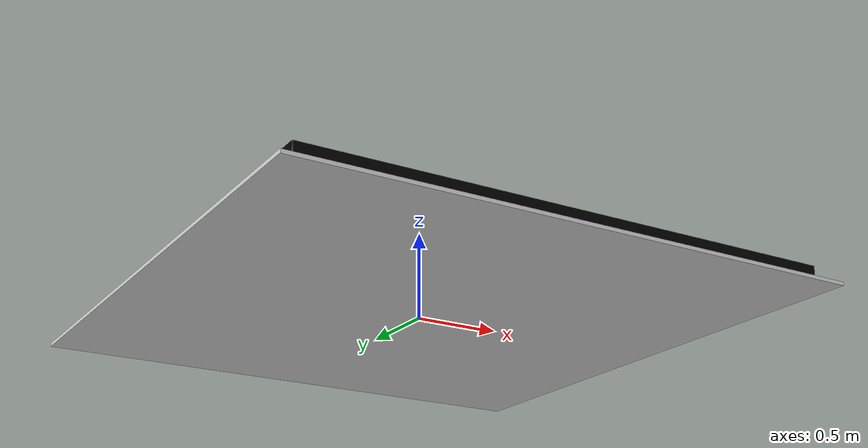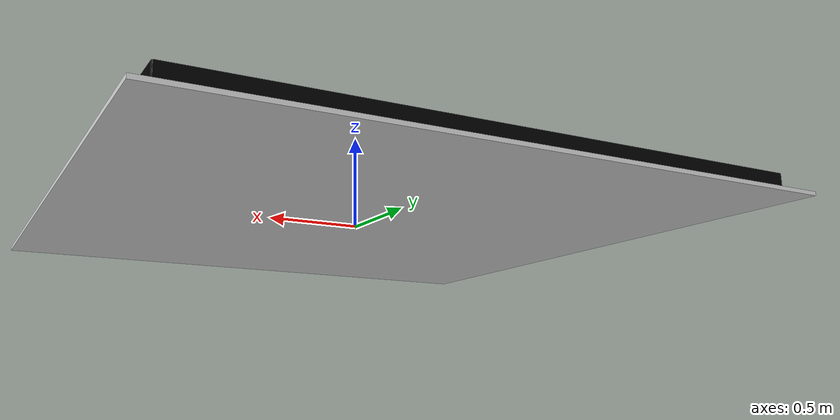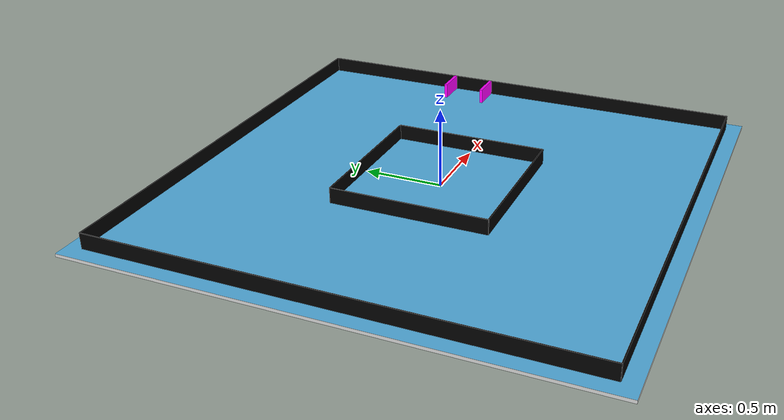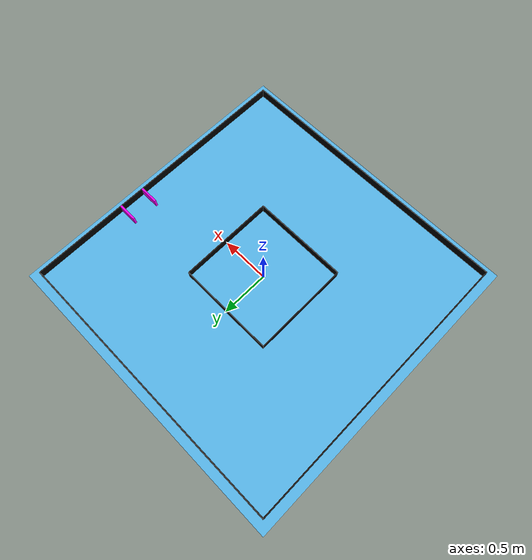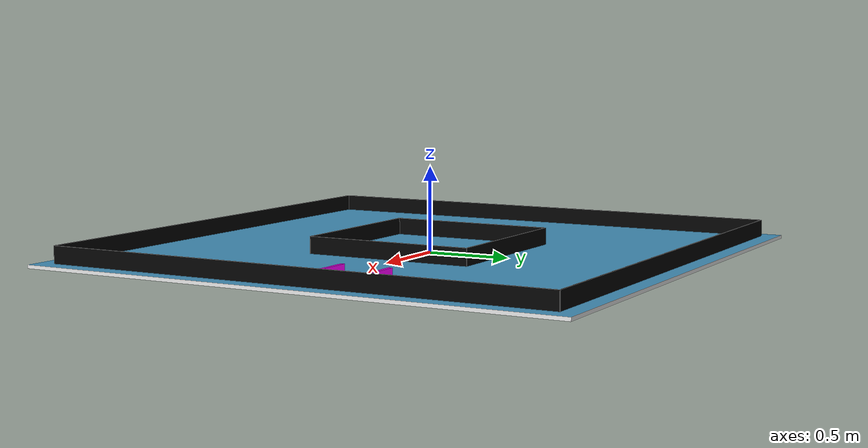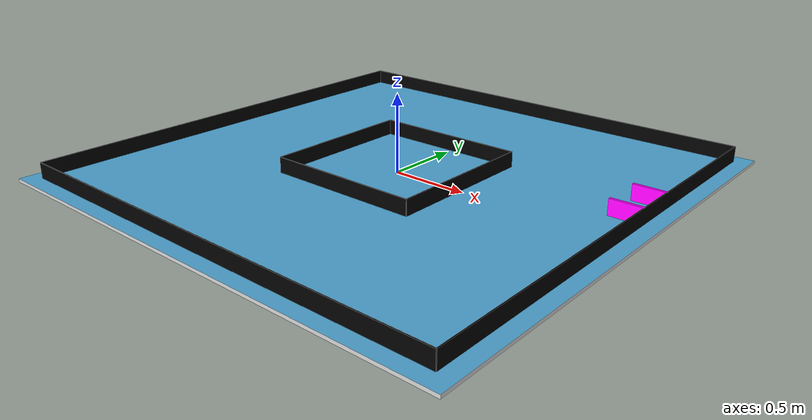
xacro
<?xml version="1.0"?>
<robot xmlns:xacro="http://www.ros.org/wiki/xacro" name="wro_world">
    <link name="world_base_link"/>

    <xacro:arg name="data" default="[[0,0,0,0,0,0],[0,0,0,0,0,0],[0,0,0,0,0,0],[0,0,0,0,0,0]]" />

    <xacro:arg name="mat_config" default="[0, 0, 0, 0]"/>

    <!-- sides extension status -->
    <xacro:property name="twv" value="${$(arg mat_config)[0]}"/>
    <xacro:property name="bwv" value="${$(arg mat_config)[1]}"/>
    <xacro:property name="rwv" value="${$(arg mat_config)[2]}"/>
    <xacro:property name="lwv" value="${$(arg mat_config)[3]}"/>

    <!-- game mat width -->
    <xacro:property name="mw" value="3.2"/>

    <!-- outer wall width -->
    <xacro:property name="oww" value="3"/>

    <!-- inner wall width -->
    <xacro:property name="iww" value="1"/>

    <!-- game mat height/thickness -->
    <xacro:property name="mh" value="0.02"/>

    <!-- lane adjustment value -->
    <xacro:property name="ladj" value="0.4"/>

    <xacro:include filename="colors.xacro"/>
    <xacro:include filename="inertials.xacro"/>
    <xacro:include filename="wall.xacro"/>
    <xacro:include filename="parts.xacro"/>

    <!-- mat link loaded from collada meshfile -->
    <link name="mat_link">
        <visual name="">
            <origin xyz="0.0 0.0 0" rpy="0.0 0.0 0.0"/>
            <geometry>
                <mesh filename="file://$(find wro_robosim)/meshes/wro_mat.dae" scale="1 1 1"/>
            </geometry>
        </visual>
        <collision>
            <origin xyz="0.0 0.0 ${mh/2}" rpy="0.0 0.0 0.0"/>
            <geometry>
                <box size="${mw} ${mw} ${mh}"/>
            </geometry>
        </collision>
        <xacro:box_inertia x="${mw}" y="${mw}" z="${mh}">
            <origin xyz="0.0 0.0 ${mh/2}" rpy="0.0 0.0 0.0"/>
        </xacro:box_inertia>
    </link>
    <joint name="world_mat_link" type="fixed">
        <parent link="world_base_link"/>
        <child link="mat_link"/>
    </joint>

    <!-- side shifting values -->
    <xacro:property name="tsv" value="${ladj*twv}"/>
    <xacro:property name="bsv" value="${ladj*bwv}"/>
    <xacro:property name="rsv" value="${ladj*rwv}"/>
    <xacro:property name="lsv" value="${ladj*lwv}"/>

    <!-- inner walls lengths -->
    <xacro:property name="til" value="${iww+rsv+lsv}"/>
    <xacro:property name="bil" value="${iww+rsv+lsv}"/>
    <xacro:property name="ril" value="${iww+tsv+bsv}"/>
    <xacro:property name="lil" value="${iww+tsv+bsv}"/>

    <!-- outer wall objects -->
    <xacro:wall link_name="top_outer_wall" x="${0}" y="${oww/2}" l="${oww}" dir="1"/>
    <xacro:wall link_name="bottom_outer_wall" x="${0}" y="${-oww/2}" l="${oww}" dir="1"/>
    <xacro:wall link_name="right_outer_wall" x="${oww/2}" y="${0}" l="${oww}" dir="0"/>
    <xacro:wall link_name="left_outer_wall" x="${-oww/2}" y="${0}" l="${oww}" dir="0"/>

    <!-- inner wall objects -->
    <xacro:wall link_name="top_inner_wall" x="${rsv/2-lsv/2}" y="${iww/2+tsv}" l="${til}" dir="1"/>
    <xacro:wall link_name="bottom_inner_wall" x="${rsv/2-lsv/2}" y="${-iww/2-bsv}" l="${bil}" dir="1"/>
    <xacro:wall link_name="right_inner_wall" x="${iww/2+rsv}" y="${tsv/2-bsv/2}" l="${ril}" dir="0"/>
    <xacro:wall link_name="left_inner_wall" x="${-iww/2-lsv}" y="${tsv/2-bsv/2}" l="${lil}" dir="0"/>

    <xacro:property name="section_blocks_data" value="${$(arg data)}" />

    <!-- placing block in each section -->
    <xacro:section id="0" blocks_data="${section_blocks_data[0]}">
        <origin xyz="0.5 -0.5 ${mh}" rpy="0.0 0.0 0.0"/>
    </xacro:section>
    <xacro:section id="1" blocks_data="${section_blocks_data[1]}">
        <origin xyz="0.5 0.5 ${mh}" rpy="0.0 0.0 ${pi/2}"/>
    </xacro:section>
    <xacro:section id="2" blocks_data="${section_blocks_data[2]}">
        <origin xyz="-0.5 0.5 ${mh}" rpy="0.0 0.0 ${pi}"/>
    </xacro:section>
    <xacro:section id="3" blocks_data="${section_blocks_data[3]}">
        <origin xyz="-0.5 -0.5 ${mh}" rpy="0.0 0.0 ${3*pi/2}"/>
    </xacro:section>

    <!-- parking area -->
    <link name="park_wall1">
        <visual>
            <geometry>
                <box size="0.2 0.02 0.1"/>
            </geometry>
            <material name="magenta"/>
        </visual>
        <collision>
            <geometry>
                <box size="0.2 0.02 0.1"/>
            </geometry>
            <material name="magenta"/>
        </collision>
        <xacro:box_inertia x="0.2" y="0.02" z="0.1">
            <origin xyz="0.0 0.0 0.0" rpy="0.0 0.0 0.0"/>
        </xacro:box_inertia>
    </link>
    <joint name="park_wall1_joint" type="fixed">
        <parent link="world_base_link"/>
        <child link="park_wall1"/>
        <origin xyz="${0.5+0.9} 0.5 ${0.05+mh}" rpy="0.0 0.0 0.0"/>
    </joint>
    <gazebo reference="park_wall1">
        <material>Gazebo/Purple</material>
    </gazebo>

    <link name="park_wall2">
        <visual>
            <geometry>
                <box size="0.2 0.02 0.1"/>
            </geometry>
            <material name="magenta"/>
        </visual>
        <collision>
            <geometry>
                <box size="0.2 0.02 0.1"/>
            </geometry>
            <material name="magenta"/>
        </collision>
        <xacro:box_inertia x="0.2" y="0.02" z="0.1">
            <origin xyz="0.0 0.0 0.0" rpy="0.0 0.0 0.0"/>
        </xacro:box_inertia>
    </link>
    <joint name="park_wall2_joint" type="fixed">
        <parent link="world_base_link"/>
        <child link="park_wall2"/>
        <origin xyz="${0.5+0.9} ${0.5-1.5*0.184} ${0.05+mh}" rpy="0.0 0.0 0.0"/>
    </joint>
    <gazebo reference="park_wall2">
        <material>Gazebo/Purple</material>
    </gazebo>

</robot>

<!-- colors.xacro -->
<robot xmlns:xacro="http://www.ros.org/wiki/xacro">
    <material name="green">
        <color rgba="${68/255} ${214/255} ${44/255} 1"/>
    </material>

    <material name="blue">
        <color rgba="0 0 1 1"/>
    </material>

    <material name="red">
        <color rgba="${238/255} ${39/255} ${55/255} 1"/>
    </material>

    <material name="grey">
        <color rgba="0.6 0.6 0.6 1"/>
    </material>

    <material name="black">
        <color rgba="0 0 0 1"/>
    </material>

    <material name="white">
        <color rgba="1 1 1 1"/>
    </material>

    <material name="magenta">
        <color rgba="1 0 1 1"/>
    </material>

    <xacro:macro name="gz_color" params="rgba">
        <material>
            <ambient>${rgba}</ambient>
            <diffuse>${rgba}</diffuse>
            <specular>${rgba}</specular>
        </material>
    </xacro:macro>
</robot>

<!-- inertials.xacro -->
<robot xmlns:xacro="http://www.ros.org/wiki/xacro">
    <xacro:property name="density" value = "1000" />

    <xacro:macro name="box_inertia" params="x y z *origin">
        <xacro:property name="mass" value="${density*x*y*z}" />
        <inertial>
            <xacro:insert_block name="origin"/>
            <mass value="${mass}"/>
            <inertia ixx="${(1/12)*mass*(y*y+z*z)}" ixy="0.0" ixz="0.0" iyy="${(1/12)*mass*(x*x+z*z)}" iyz="0.0" izz="${(1/12)*mass*(x*x+y*y)}"/>
        </inertial>
    </xacro:macro>

    <xacro:macro name="cylinder_inertia" params="r h *origin">
        <xacro:property name="mass" value="${density*pi*r*r*h}" />
        <inertial>
            <xacro:insert_block name="origin"/>
            <mass value="${mass}"/>
            <inertia ixx="${(1/12)*mass*(3*r*r + h*h)}" ixy="0.0" ixz="0.0" iyy="${(1/12)*mass*(3*r*r+h*h)}" iyz="0.0" izz="${(1/12)*mass*(r*r)}"/>
        </inertial>
    </xacro:macro>

    <xacro:macro name="sphere_inertia" params="r *origin">
        <xacro:property name="mass" value="${(4/3)*density*pi*r*r*r}" />
        <inertial>
            <xacro:insert_block name="origin"/>
            <mass value="${mass}"/>
            <inertia ixx="${(2/5)*mass*r*r}" ixy="0.0" ixz="0.0" iyy="${(2/5)*mass*r*r}" iyz="0.0" izz="${(2/5)*mass*r*r}"/>
        </inertial>
    </xacro:macro>
</robot>

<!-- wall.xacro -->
<robot xmlns:xacro="http://www.ros.org/wiki/xacro">
    <xacro:property name="wall_h" value="0.1"/>
    <xacro:property name="wall_th" value="0.007"/>

    <xacro:macro name="wall" params="link_name x y l dir">
        <link name="${link_name}">
            <visual name="">
                <origin xyz="0 0 0" rpy="0.0 0.0 0"/>
                <geometry>
                    <box size="${wall_th} ${l} ${wall_h}"/>
                </geometry>
                <material name="">
                    <color rgba="0 0.0 0.0 1.0"/>
                </material>
            </visual>
            <collision>
                <origin xyz="0.0 0.0 0.0" rpy="0.0 0.0 0"/>
                <geometry>
                    <box size="${wall_th} ${l} ${wall_h}"/>
                </geometry>
            </collision>
            <xacro:box_inertia x="${wall_th}" y="${l}" z="${wall_h}">
                <origin xyz="0.0 0.0 0.0" rpy="0.0 0.0 0"/>
            </xacro:box_inertia>
        </link>
        <joint name="${link_name}_joint" type="fixed">
            <parent link="world_base_link"/>
            <child link="${link_name}"/>
            <origin xyz="${x} ${y} ${wall_h/2+0.02}" rpy="0.0 0.0  ${dir*pi/2}"/>
        </joint>
        <gazebo reference="${link_name}">
            <material>Gazebo/Black</material>
        </gazebo>

    </xacro:macro>
</robot>

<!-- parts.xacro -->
<robot xmlns:xacro="http://www.ros.org/wiki/xacro">
    <xacro:property name="wall_h" value="0.1"/>
    <xacro:property name="wall_th" value="0.007"/>

    <xacro:macro name="block" params="link_name x y color *origin">
        <link name="${link_name}">
            <visual>
                <origin xyz="${x} ${y} 0.05" rpy="0.0 0.0 0.0"/>
                <geometry>
                    <box size="0.050 0.050 0.100"/>
                </geometry>
                <material name="${color.lower()}"/>
            </visual>
            <collision>
                <origin xyz="${x} ${y} 0.05" rpy="0.0 0.0 0.0"/>
                <geometry>
                    <box size="0.050 0.050 0.100"/>
                </geometry>
            </collision>
            <xacro:box_inertia x="0.050" y="0.050" z="0.100">
                <origin xyz="${x} ${y} 0.05" rpy="0.0 0.0 0.0"/>
            </xacro:box_inertia>
        </link>
        <joint name="${link_name}_joint" type="fixed">
            <xacro:insert_block name="origin"/>
            <parent link="world_base_link"/>
            <child link="${link_name}"/>
        </joint>
        <gazebo reference="${link_name}">
            <material>Gazebo/${color}</material>
        </gazebo>
    </xacro:macro>

    <xacro:macro name="place_block" params="link_name x y block_data *origin">
        <xacro:if value="${block_data==1}">
            <xacro:block link_name="${link_name}" x="${x}" y="${y}" color="Red">
                <xacro:insert_block name="origin"/>
            </xacro:block>
        </xacro:if>
        <xacro:if value="${block_data==2}">
            <xacro:block link_name="${link_name}" x="${x}" y="${y}" color="Green">
                <xacro:insert_block name="origin"/>
            </xacro:block>
        </xacro:if>
    </xacro:macro>

    <xacro:macro name="section" params="id blocks_data *origin">
        <xacro:place_block link_name="block_0_section_${id}" x="0.4" y="0" block_data="${blocks_data[0]}">
            <xacro:insert_block name="origin"/>
        </xacro:place_block>

        <xacro:place_block link_name="block_1_section_${id}" x="0.6" y="0" block_data="${blocks_data[1]}">
            <xacro:insert_block name="origin"/>
        </xacro:place_block>

        <xacro:place_block link_name="block_2_section_${id}" x="0.4" y="0.5" block_data="${blocks_data[2]}">
            <xacro:insert_block name="origin"/>
        </xacro:place_block>

        <xacro:place_block link_name="block_3_section_${id}" x="0.6" y="0.5" block_data="${blocks_data[3]}">
            <xacro:insert_block name="origin"/>
        </xacro:place_block>

        <xacro:place_block link_name="block_4_section_${id}" x="0.4" y="1" block_data="${blocks_data[4]}">
            <xacro:insert_block name="origin"/>
        </xacro:place_block>

        <xacro:place_block link_name="block_5_section_${id}" x="0.6" y="1" block_data="${blocks_data[5]}">
            <xacro:insert_block name="origin"/>
        </xacro:place_block>
    </xacro:macro>
</robot>
